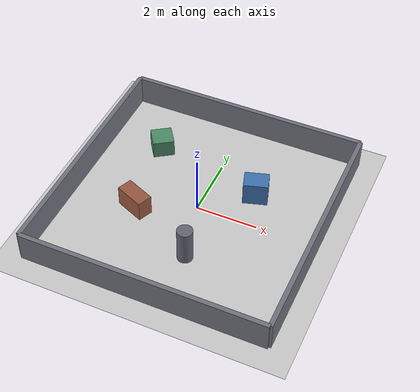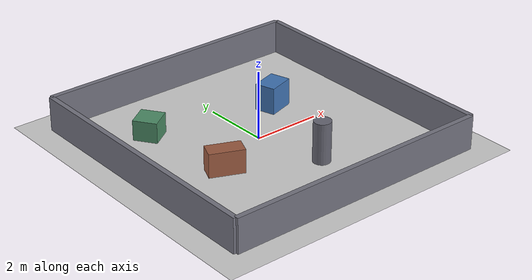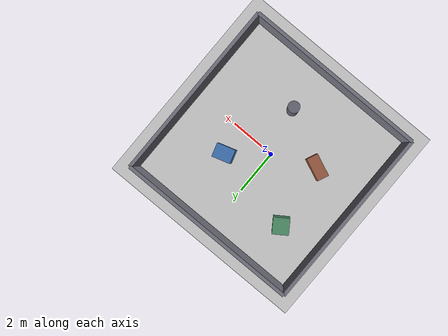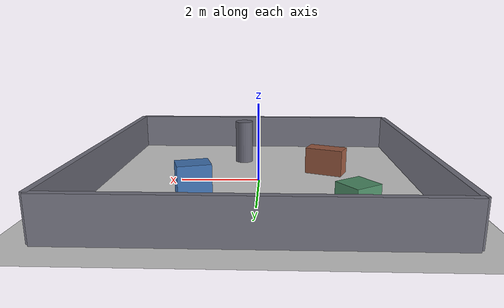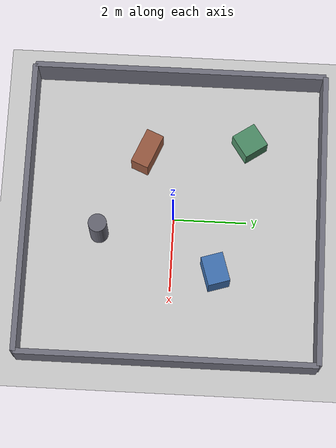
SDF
<?xml version="1.0"?>
<sdf version="1.6">
  <world name="spider_map">
    <gravity>0 0 -9.81</gravity>

    <include>
      <uri>model://ground_plane</uri>
    </include>
    <include>
      <uri>model://sun</uri>
    </include>

    <scene>
      <ambient>0.45 0.45 0.45 1</ambient>
      <background>0.70 0.78 0.88 1</background>
      <shadows>true</shadows>
    </scene>

    <physics name="default_physics" type="ode">
      <max_step_size>0.001</max_step_size>
      <real_time_update_rate>1000</real_time_update_rate>
      <ode>
        <solver>
          <type>quick</type>
          <iters>80</iters>
          <sor>1.3</sor>
        </solver>
        <constraints>
          <cfm>0.0001</cfm>
          <erp>0.2</erp>
          <contact_max_correcting_vel>100</contact_max_correcting_vel>
          <contact_surface_layer>0.001</contact_surface_layer>
        </constraints>
      </ode>
    </physics>

    <!-- Simple room walls for lidar mapping -->
    <model name="wall_north">
      <static>true</static>
      <pose>0 4 0.5 0 0 0</pose>
      <link name="link">
        <collision name="c"><geometry><box><size>8 0.15 1.0</size></box></geometry></collision>
        <visual name="v"><geometry><box><size>8 0.15 1.0</size></box></geometry>
          <material><ambient>0.3 0.3 0.35 1</ambient><diffuse>0.45 0.45 0.5 1</diffuse></material>
        </visual>
      </link>
    </model>
    <model name="wall_south">
      <static>true</static>
      <pose>0 -4 0.5 0 0 0</pose>
      <link name="link">
        <collision name="c"><geometry><box><size>8 0.15 1.0</size></box></geometry></collision>
        <visual name="v"><geometry><box><size>8 0.15 1.0</size></box></geometry>
          <material><ambient>0.3 0.3 0.35 1</ambient><diffuse>0.45 0.45 0.5 1</diffuse></material>
        </visual>
      </link>
    </model>
    <model name="wall_east">
      <static>true</static>
      <pose>4 0 0.5 0 0 0</pose>
      <link name="link">
        <collision name="c"><geometry><box><size>0.15 8 1.0</size></box></geometry></collision>
        <visual name="v"><geometry><box><size>0.15 8 1.0</size></box></geometry>
          <material><ambient>0.3 0.3 0.35 1</ambient><diffuse>0.45 0.45 0.5 1</diffuse></material>
        </visual>
      </link>
    </model>
    <model name="wall_west">
      <static>true</static>
      <pose>-4 0 0.5 0 0 0</pose>
      <link name="link">
        <collision name="c"><geometry><box><size>0.15 8 1.0</size></box></geometry></collision>
        <visual name="v"><geometry><box><size>0.15 8 1.0</size></box></geometry>
          <material><ambient>0.3 0.3 0.35 1</ambient><diffuse>0.45 0.45 0.5 1</diffuse></material>
        </visual>
      </link>
    </model>

    <!-- Interior obstacles -->
    <model name="box_a">
      <static>true</static>
      <pose>1.5 1.2 0.4 0 0 0.3</pose>
      <link name="link">
        <collision name="c"><geometry><box><size>0.8 0.6 0.8</size></box></geometry></collision>
        <visual name="v"><geometry><box><size>0.8 0.6 0.8</size></box></geometry>
          <material><ambient>0.2 0.35 0.55 1</ambient><diffuse>0.25 0.45 0.7 1</diffuse></material>
        </visual>
      </link>
    </model>
    <model name="box_b">
      <static>true</static>
      <pose>-1.8 -0.8 0.35 0 0 -0.4</pose>
      <link name="link">
        <collision name="c"><geometry><box><size>1.0 0.5 0.7</size></box></geometry></collision>
        <visual name="v"><geometry><box><size>1.0 0.5 0.7</size></box></geometry>
          <material><ambient>0.45 0.25 0.2 1</ambient><diffuse>0.6 0.35 0.25 1</diffuse></material>
        </visual>
      </link>
    </model>
    <model name="pillar">
      <static>true</static>
      <pose>0.5 -2.0 0.6 0 0 0</pose>
      <link name="link">
        <collision name="c"><geometry><cylinder><radius>0.25</radius><length>1.2</length></cylinder></geometry></collision>
        <visual name="v"><geometry><cylinder><radius>0.25</radius><length>1.2</length></cylinder></geometry>
          <material><ambient>0.25 0.25 0.28 1</ambient><diffuse>0.4 0.4 0.45 1</diffuse></material>
        </visual>
      </link>
    </model>
    <model name="box_c">
      <static>true</static>
      <pose>-2.2 2.0 0.3 0 0 0.6</pose>
      <link name="link">
        <collision name="c"><geometry><box><size>0.7 0.7 0.6</size></box></geometry></collision>
        <visual name="v"><geometry><box><size>0.7 0.7 0.6</size></box></geometry>
          <material><ambient>0.2 0.4 0.3 1</ambient><diffuse>0.3 0.55 0.4 1</diffuse></material>
        </visual>
      </link>
    </model>
  </world>
</sdf>
